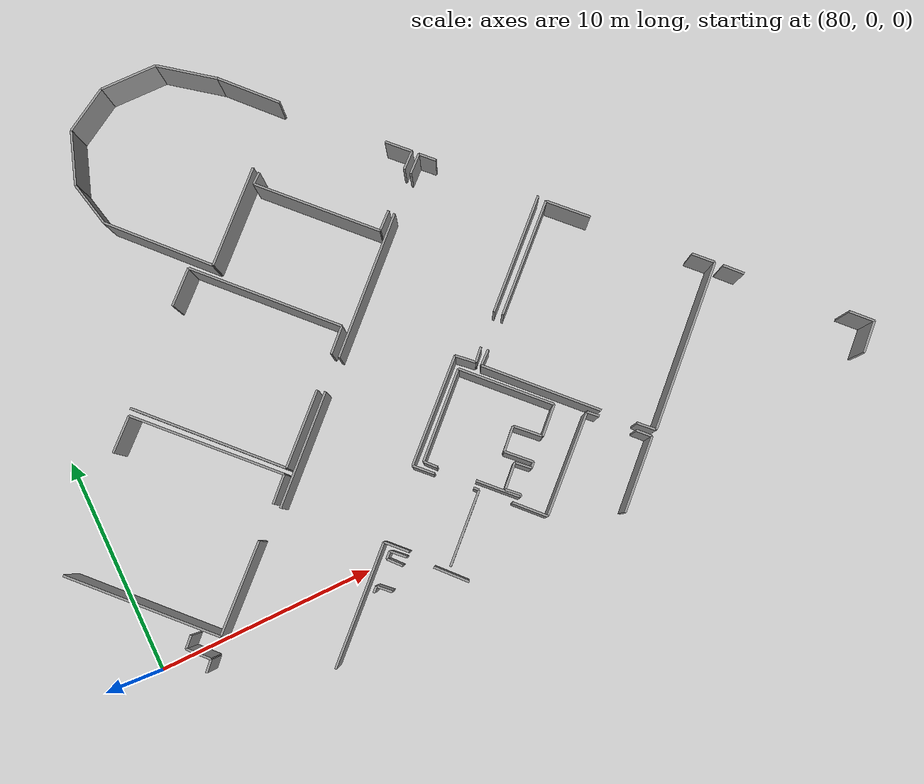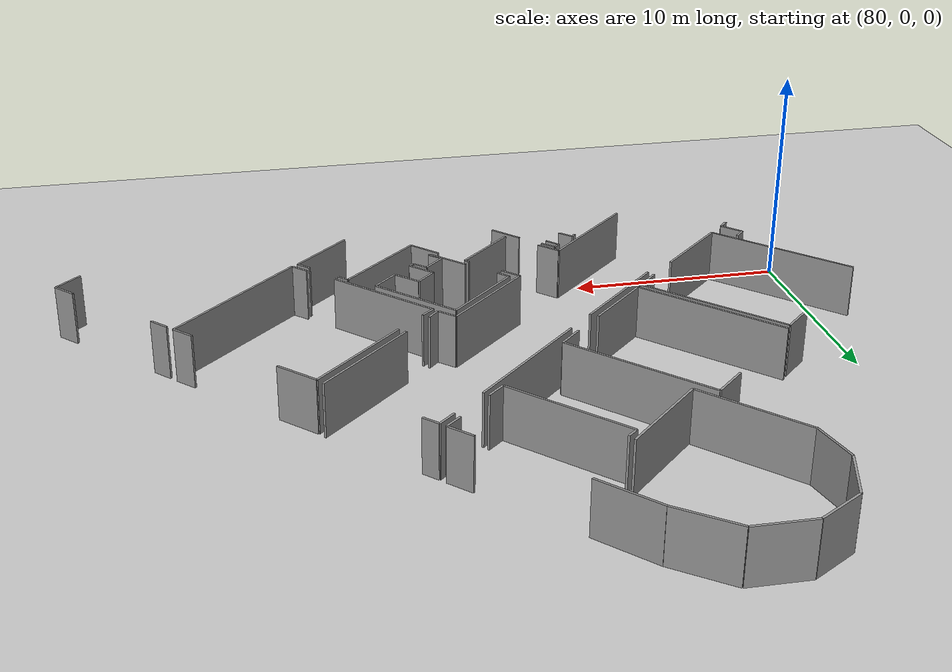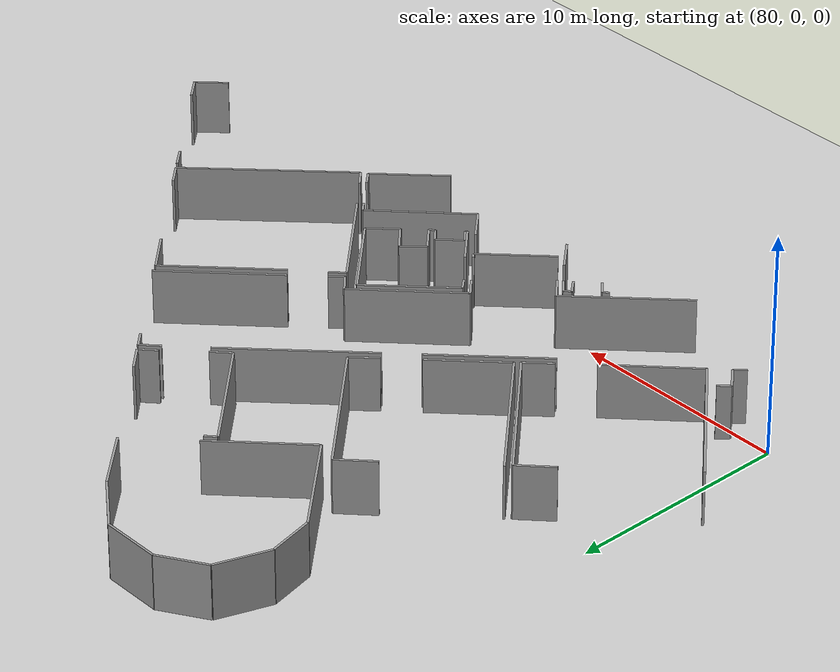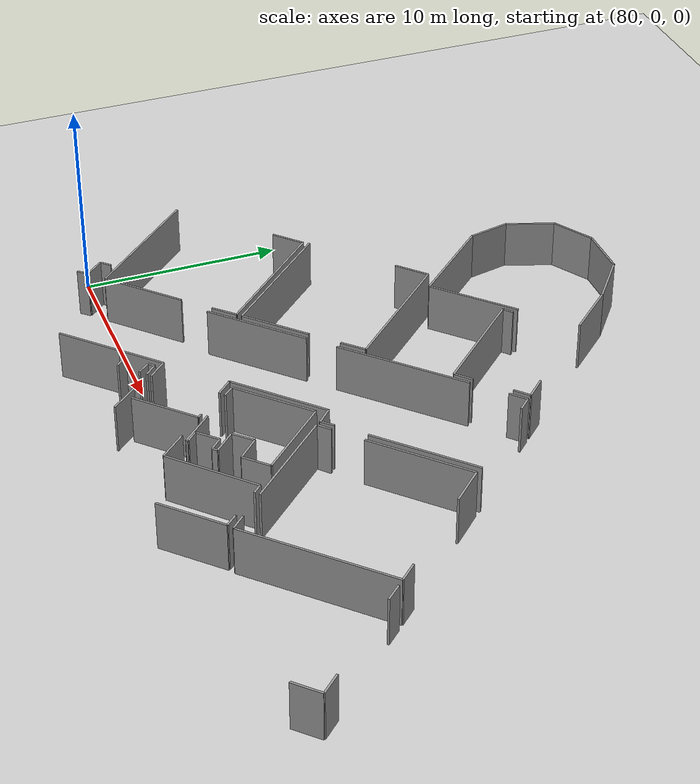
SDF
<sdf version="1.6">
 <world name="default">
  <model name="ground_plane">
   <static>1</static>
   <link name="link">
    <collision name="collision">
     <geometry><plane><normal>0 0 1</normal><size>100 100</size></plane></geometry>
     <surface><friction><ode><mu>100</mu><mu2>50</mu2></ode></friction></surface>
    </collision>
    <visual name="visual">
     <cast_shadows>0</cast_shadows>
     <geometry><plane><normal>0 0 1</normal><size>100 100</size></plane></geometry>
     <material>
      <script><uri>file://media/materials/scripts/gazebo.material</uri><name>Gazebo/Grey</name></script>
     </material>
    </visual>
   </link>
  </model>
  <model name="0510035343_A_40_1_102">
   <static>1</static>
   <link name="Wall_574">
    <collision name="Wall_574_Collision">
     <geometry><box><size>5.35597744258 0.1 2.5</size></box></geometry>
     <pose>2.67798872129 0 1.25 0 0 0</pose>
    </collision>
    <visual name="Wall_574_Visual">
     <pose>2.67798872129 0 1.25 0 0 0</pose>
     <geometry><box><size>5.35597744258 0.1 2.5</size></box></geometry>
     <material>
      <script><uri>file://media/materials/scripts/gazebo.material</uri><name>Gazebo/Grey</name></script>
      <ambient>1 1 1 1</ambient>
     </material>
    </visual>
    <pose>204.642736996 -20.2969310356 0 0 0 0.770984143281</pose>
   </link>
   <link name="Wall_575">
    <collision name="Wall_575_Collision">
     <geometry><box><size>6.81104878013 0.1 2.5</size></box></geometry>
     <pose>3.40552439007 0 1.25 0 0 0</pose>
    </collision>
    <visual name="Wall_575_Visual">
     <pose>3.40552439007 0 1.25 0 0 0</pose>
     <geometry><box><size>6.81104878013 0.1 2.5</size></box></geometry>
     <material>
      <script><uri>file://media/materials/scripts/gazebo.material</uri><name>Gazebo/Grey</name></script>
      <ambient>1 1 1 1</ambient>
     </material>
    </visual>
    <pose>209.631787743 -15.4655495255 0 0 0 0.771005737087</pose>
   </link>
   <link name="Wall_576">
    <collision name="Wall_576_Collision">
     <geometry><box><size>0.946345172183 0.1 2.5</size></box></geometry>
     <pose>0.473172586092 0 1.25 0 0 0</pose>
    </collision>
    <visual name="Wall_576_Visual">
     <pose>0.473172586092 0 1.25 0 0 0</pose>
     <geometry><box><size>0.946345172183 0.1 2.5</size></box></geometry>
     <material>
      <script><uri>file://media/materials/scripts/gazebo.material</uri><name>Gazebo/Grey</name></script>
      <ambient>1 1 1 1</ambient>
     </material>
    </visual>
    <pose>215.930940366 -9.38119267511 0 0 0 0.740991371402</pose>
   </link>
   <link name="Wall_577">
    <collision name="Wall_577_Collision">
     <geometry><box><size>0.811007807379 0.1 2.5</size></box></geometry>
     <pose>0.405503903689 0 1.25 0 0 0</pose>
    </collision>
    <visual name="Wall_577_Visual">
     <pose>0.405503903689 0 1.25 0 0 0</pose>
     <geometry><box><size>0.811007807379 0.1 2.5</size></box></geometry>
     <material>
      <script><uri>file://media/materials/scripts/gazebo.material</uri><name>Gazebo/Grey</name></script>
      <ambient>1 1 1 1</ambient>
     </material>
    </visual>
    <pose>216.629153575 -8.74239106287 0 0 0 -0.798016488557</pose>
   </link>
   <link name="Wall_578">
    <collision name="Wall_578_Collision">
     <geometry><box><size>5.53322141481 0.1 2.5</size></box></geometry>
     <pose>2.76661070741 0 1.25 0 0 0</pose>
    </collision>
    <visual name="Wall_578_Visual">
     <pose>2.76661070741 0 1.25 0 0 0</pose>
     <geometry><box><size>5.53322141481 0.1 2.5</size></box></geometry>
     <material>
      <script><uri>file://media/materials/scripts/gazebo.material</uri><name>Gazebo/Grey</name></script>
      <ambient>1 1 1 1</ambient>
     </material>
    </visual>
    <pose>220.577231902 -12.7054492367 0 0 0 -2.37650713707</pose>
   </link>
   <link name="Wall_579">
    <collision name="Wall_579_Collision">
     <geometry><box><size>0.702484060001 0.1 2.5</size></box></geometry>
     <pose>0.35124203 0 1.25 0 0 0</pose>
    </collision>
    <visual name="Wall_579_Visual">
     <pose>0.35124203 0 1.25 0 0 0</pose>
     <geometry><box><size>0.702484060001 0.1 2.5</size></box></geometry>
     <material>
      <script><uri>file://media/materials/scripts/gazebo.material</uri><name>Gazebo/Grey</name></script>
      <ambient>1 1 1 1</ambient>
     </material>
    </visual>
    <pose>215.395220413 -17.6939921927 0 0 0 -2.31785012235</pose>
   </link>
   <link name="Wall_580">
    <collision name="Wall_580_Collision">
     <geometry><box><size>0.95797903944 0.1 2.5</size></box></geometry>
     <pose>0.47898951972 0 1.25 0 0 0</pose>
    </collision>
    <visual name="Wall_580_Visual">
     <pose>0.47898951972 0 1.25 0 0 0</pose>
     <geometry><box><size>0.95797903944 0.1 2.5</size></box></geometry>
     <material>
      <script><uri>file://media/materials/scripts/gazebo.material</uri><name>Gazebo/Grey</name></script>
      <ambient>1 1 1 1</ambient>
     </material>
    </visual>
    <pose>214.917896474 -18.2094004887 0 0 0 2.38355923619</pose>
   </link>
   <link name="Wall_581">
    <collision name="Wall_581_Collision">
     <geometry><box><size>5.11075482828 0.1 2.5</size></box></geometry>
     <pose>2.55537741414 0 1.25 0 0 0</pose>
    </collision>
    <visual name="Wall_581_Visual">
     <pose>2.55537741414 0 1.25 0 0 0</pose>
     <geometry><box><size>5.11075482828 0.1 2.5</size></box></geometry>
     <material>
      <script><uri>file://media/materials/scripts/gazebo.material</uri><name>Gazebo/Grey</name></script>
      <ambient>1 1 1 1</ambient>
     </material>
    </visual>
    <pose>214.222222222 -17.5507950109 0 0 0 -2.37867840273</pose>
   </link>
   <link name="Wall_582">
    <collision name="Wall_582_Collision">
     <geometry><box><size>1.00522058116 0.1 2.5</size></box></geometry>
     <pose>0.502610290581 0 1.25 0 0 0</pose>
    </collision>
    <visual name="Wall_582_Visual">
     <pose>0.502610290581 0 1.25 0 0 0</pose>
     <geometry><box><size>1.00522058116 0.1 2.5</size></box></geometry>
     <material>
      <script><uri>file://media/materials/scripts/gazebo.material</uri><name>Gazebo/Grey</name></script>
      <ambient>1 1 1 1</ambient>
     </material>
    </visual>
    <pose>210.528039608 -21.0824843695 0 0 0 -0.792363580307</pose>
   </link>
   <link name="Wall_583">
    <collision name="Wall_583_Collision">
     <geometry><box><size>0.249557142437 0.1 2.5</size></box></geometry>
     <pose>0.124778571218 0 1.25 0 0 0</pose>
    </collision>
    <visual name="Wall_583_Visual">
     <pose>0.124778571218 0 1.25 0 0 0</pose>
     <geometry><box><size>0.249557142437 0.1 2.5</size></box></geometry>
     <material>
      <script><uri>file://media/materials/scripts/gazebo.material</uri><name>Gazebo/Grey</name></script>
      <ambient>1 1 1 1</ambient>
     </material>
    </visual>
    <pose>212.498270335 -23.0646481958 0 0 0 -0.861728651032</pose>
   </link>
   <link name="Wall_584">
    <collision name="Wall_584_Collision">
     <geometry><box><size>3.47196808296 0.1 2.5</size></box></geometry>
     <pose>1.73598404148 0 1.25 0 0 0</pose>
    </collision>
    <visual name="Wall_584_Visual">
     <pose>1.73598404148 0 1.25 0 0 0</pose>
     <geometry><box><size>3.47196808296 0.1 2.5</size></box></geometry>
     <material>
      <script><uri>file://media/materials/scripts/gazebo.material</uri><name>Gazebo/Grey</name></script>
      <ambient>1 1 1 1</ambient>
     </material>
    </visual>
    <pose>212.660763591 -23.2540543972 0 0 0 -2.37398326316</pose>
   </link>
   <link name="Wall_586">
    <collision name="Wall_586_Collision">
     <geometry><box><size>1.16697001663 0.1 2.5</size></box></geometry>
     <pose>0.583485008315 0 1.25 0 0 0</pose>
    </collision>
    <visual name="Wall_586_Visual">
     <pose>0.583485008315 0 1.25 0 0 0</pose>
     <geometry><box><size>1.16697001663 0.1 2.5</size></box></geometry>
     <material>
      <script><uri>file://media/materials/scripts/gazebo.material</uri><name>Gazebo/Grey</name></script>
      <ambient>1 1 1 1</ambient>
     </material>
    </visual>
    <pose>208.847249992 -24.3468215431 0 0 0 2.33788602682</pose>
   </link>
   <link name="Wall_587">
    <collision name="Wall_587_Collision">
     <geometry><box><size>5.69097481435 0.1 2.5</size></box></geometry>
     <pose>2.84548740717 0 1.25 0 0 0</pose>
    </collision>
    <visual name="Wall_587_Visual">
     <pose>2.84548740717 0 1.25 0 0 0</pose>
     <geometry><box><size>5.69097481435 0.1 2.5</size></box></geometry>
     <material>
      <script><uri>file://media/materials/scripts/gazebo.material</uri><name>Gazebo/Grey</name></script>
      <ambient>1 1 1 1</ambient>
     </material>
    </visual>
    <pose>208.03732267 -23.5066806309 0 0 0 -2.37405086182</pose>
   </link>
   <link name="Wall_608">
    <collision name="Wall_608_Collision">
     <geometry><box><size>0.605645803931 0.1 2.5</size></box></geometry>
     <pose>0.302822901965 0 1.25 0 0 0</pose>
    </collision>
    <visual name="Wall_608_Visual">
     <pose>0.302822901965 0 1.25 0 0 0</pose>
     <geometry><box><size>0.605645803931 0.1 2.5</size></box></geometry>
     <material>
      <script><uri>file://media/materials/scripts/gazebo.material</uri><name>Gazebo/Grey</name></script>
      <ambient>1 1 1 1</ambient>
     </material>
    </visual>
    <pose>199.005236599 -23.5493351106 0 0 0 -2.33929719549</pose>
   </link>
   <link name="Wall_609">
    <collision name="Wall_609_Collision">
     <geometry><box><size>1.15027437763 0.1 2.5</size></box></geometry>
     <pose>0.575137188815 0 1.25 0 0 0</pose>
    </collision>
    <visual name="Wall_609_Visual">
     <pose>0.575137188815 0 1.25 0 0 0</pose>
     <geometry><box><size>1.15027437763 0.1 2.5</size></box></geometry>
     <material>
      <script><uri>file://media/materials/scripts/gazebo.material</uri><name>Gazebo/Grey</name></script>
      <ambient>1 1 1 1</ambient>
     </material>
    </visual>
    <pose>198.584277508 -23.9847662573 0 0 0 -0.821147411722</pose>
   </link>
   <link name="Wall_610">
    <collision name="Wall_610_Collision">
     <geometry><box><size>0.595863378748 0.1 2.5</size></box></geometry>
     <pose>0.297931689374 0 1.25 0 0 0</pose>
    </collision>
    <visual name="Wall_610_Visual">
     <pose>0.297931689374 0 1.25 0 0 0</pose>
     <geometry><box><size>0.595863378748 0.1 2.5</size></box></geometry>
     <material>
      <script><uri>file://media/materials/scripts/gazebo.material</uri><name>Gazebo/Grey</name></script>
      <ambient>1 1 1 1</ambient>
     </material>
    </visual>
    <pose>199.368053572 -24.8266844394 0 0 0 -2.32153848883</pose>
   </link>
   <link name="Wall_613">
    <collision name="Wall_613_Collision">
     <geometry><box><size>7.22774829624 0.1 2.5</size></box></geometry>
     <pose>3.61387414812 0 1.25 0 0 0</pose>
    </collision>
    <visual name="Wall_613_Visual">
     <pose>3.61387414812 0 1.25 0 0 0</pose>
     <geometry><box><size>7.22774829624 0.1 2.5</size></box></geometry>
     <material>
      <script><uri>file://media/materials/scripts/gazebo.material</uri><name>Gazebo/Grey</name></script>
      <ambient>1 1 1 1</ambient>
     </material>
    </visual>
    <pose>200.108413469 -24.1444666603 0 0 0 2.33629698978</pose>
   </link>
   <link name="Wall_615">
    <collision name="Wall_615_Collision">
     <geometry><box><size>1.72549806891 0.1 2.5</size></box></geometry>
     <pose>0.862749034455 0 1.25 0 0 0</pose>
    </collision>
    <visual name="Wall_615_Visual">
     <pose>0.862749034455 0 1.25 0 0 0</pose>
     <geometry><box><size>1.72549806891 0.1 2.5</size></box></geometry>
     <material>
      <script><uri>file://media/materials/scripts/gazebo.material</uri><name>Gazebo/Grey</name></script>
      <ambient>1 1 1 1</ambient>
     </material>
    </visual>
    <pose>199.12126694 -15.0570313244 0 0 0 0.749702764283</pose>
   </link>
   <link name="Wall_616">
    <collision name="Wall_616_Collision">
     <geometry><box><size>7.19615320807 0.1 2.5</size></box></geometry>
     <pose>3.59807660404 0 1.25 0 0 0</pose>
    </collision>
    <visual name="Wall_616_Visual">
     <pose>3.59807660404 0 1.25 0 0 0</pose>
     <geometry><box><size>7.19615320807 0.1 2.5</size></box></geometry>
     <material>
      <script><uri>file://media/materials/scripts/gazebo.material</uri><name>Gazebo/Grey</name></script>
      <ambient>1 1 1 1</ambient>
     </material>
    </visual>
    <pose>200.384144213 -13.8812402806 0 0 0 -0.801166106446</pose>
   </link>
   <link name="Wall_617">
    <collision name="Wall_617_Collision">
     <geometry><box><size>1.35420530574 0.1 2.5</size></box></geometry>
     <pose>0.677102652872 0 1.25 0 0 0</pose>
    </collision>
    <visual name="Wall_617_Visual">
     <pose>0.677102652872 0 1.25 0 0 0</pose>
     <geometry><box><size>1.35420530574 0.1 2.5</size></box></geometry>
     <material>
      <script><uri>file://media/materials/scripts/gazebo.material</uri><name>Gazebo/Grey</name></script>
      <ambient>1 1 1 1</ambient>
     </material>
    </visual>
    <pose>205.391729347 -19.0492875052 0 0 0 -2.35579677047</pose>
   </link>
   <link name="Wall_618">
    <collision name="Wall_618_Collision">
     <geometry><box><size>4.32159609172 0.1 2.5</size></box></geometry>
     <pose>2.16079804586 0 1.25 0 0 0</pose>
    </collision>
    <visual name="Wall_618_Visual">
     <pose>2.16079804586 0 1.25 0 0 0</pose>
     <geometry><box><size>4.32159609172 0.1 2.5</size></box></geometry>
     <material>
      <script><uri>file://media/materials/scripts/gazebo.material</uri><name>Gazebo/Grey</name></script>
      <ambient>1 1 1 1</ambient>
     </material>
    </visual>
    <pose>203.244533308 -21.1710939732 0 0 0 -2.38282659947</pose>
   </link>
   <link name="Wall_619">
    <collision name="Wall_619_Collision">
     <geometry><box><size>7.26692390751 0.1 2.5</size></box></geometry>
     <pose>3.63346195376 0 1.25 0 0 0</pose>
    </collision>
    <visual name="Wall_619_Visual">
     <pose>3.63346195376 0 1.25 0 0 0</pose>
     <geometry><box><size>7.26692390751 0.1 2.5</size></box></geometry>
     <material>
      <script><uri>file://media/materials/scripts/gazebo.material</uri><name>Gazebo/Grey</name></script>
      <ambient>1 1 1 1</ambient>
     </material>
    </visual>
    <pose>205.587229046 -18.8479482053 0 0 0 2.33489693001</pose>
   </link>
   <link name="Wall_620">
    <collision name="Wall_620_Collision">
     <geometry><box><size>1.80214210823 0.1 2.5</size></box></geometry>
     <pose>0.901071054113 0 1.25 0 0 0</pose>
    </collision>
    <visual name="Wall_620_Visual">
     <pose>0.901071054113 0 1.25 0 0 0</pose>
     <geometry><box><size>1.80214210823 0.1 2.5</size></box></geometry>
     <material>
      <script><uri>file://media/materials/scripts/gazebo.material</uri><name>Gazebo/Grey</name></script>
      <ambient>1 1 1 1</ambient>
     </material>
    </visual>
    <pose>204.028309372 -10.2860769939 0 0 0 0.750723072206</pose>
   </link>
   <link name="Wall_621">
    <collision name="Wall_621_Collision">
     <geometry><box><size>7.20324754814 0.1 2.5</size></box></geometry>
     <pose>3.60162377407 0 1.25 0 0 0</pose>
    </collision>
    <visual name="Wall_621_Visual">
     <pose>3.60162377407 0 1.25 0 0 0</pose>
     <geometry><box><size>7.20324754814 0.1 2.5</size></box></geometry>
     <material>
      <script><uri>file://media/materials/scripts/gazebo.material</uri><name>Gazebo/Grey</name></script>
      <ambient>1 1 1 1</ambient>
     </material>
    </visual>
    <pose>205.346028119 -9.05671395474 0 0 0 -0.807158246333</pose>
   </link>
   <link name="Wall_622">
    <collision name="Wall_622_Collision">
     <geometry><box><size>1.31077730524 0.1 2.5</size></box></geometry>
     <pose>0.655388652621 0 1.25 0 0 0</pose>
    </collision>
    <visual name="Wall_622_Visual">
     <pose>0.655388652621 0 1.25 0 0 0</pose>
     <geometry><box><size>1.31077730524 0.1 2.5</size></box></geometry>
     <material>
      <script><uri>file://media/materials/scripts/gazebo.material</uri><name>Gazebo/Grey</name></script>
      <ambient>1 1 1 1</ambient>
     </material>
    </visual>
    <pose>210.327461995 -14.2597987876 0 0 0 -2.3615361734</pose>
   </link>
   <link name="Wall_623">
    <collision name="Wall_623_Collision">
     <geometry><box><size>3.60869728674 0.1 2.5</size></box></geometry>
     <pose>1.80434864337 0 1.25 0 0 0</pose>
    </collision>
    <visual name="Wall_623_Visual">
     <pose>1.80434864337 0 1.25 0 0 0</pose>
     <geometry><box><size>3.60869728674 0.1 2.5</size></box></geometry>
     <material>
      <script><uri>file://media/materials/scripts/gazebo.material</uri><name>Gazebo/Grey</name></script>
      <ambient>1 1 1 1</ambient>
     </material>
    </visual>
    <pose>208.18712114 -16.3452981688 0 0 0 -2.3752497543</pose>
   </link>
   <link name="Wall_624">
    <collision name="Wall_624_Collision">
     <geometry><box><size>5.97705456385 0.1 2.5</size></box></geometry>
     <pose>2.98852728193 0 1.25 0 0 0</pose>
    </collision>
    <visual name="Wall_624_Visual">
     <pose>2.98852728193 0 1.25 0 0 0</pose>
     <geometry><box><size>5.97705456385 0.1 2.5</size></box></geometry>
     <material>
      <script><uri>file://media/materials/scripts/gazebo.material</uri><name>Gazebo/Grey</name></script>
      <ambient>1 1 1 1</ambient>
     </material>
    </visual>
    <pose>213.620489384 -11.1422133359 0 0 0 2.33796116391</pose>
   </link>
   <link name="Wall_625">
    <collision name="Wall_625_Collision">
     <geometry><box><size>0.561423991103 0.1 2.5</size></box></geometry>
     <pose>0.280711995551 0 1.25 0 0 0</pose>
    </collision>
    <visual name="Wall_625_Visual">
     <pose>0.280711995551 0 1.25 0 0 0</pose>
     <geometry><box><size>0.561423991103 0.1 2.5</size></box></geometry>
     <material>
      <script><uri>file://media/materials/scripts/gazebo.material</uri><name>Gazebo/Grey</name></script>
      <ambient>1 1 1 1</ambient>
     </material>
    </visual>
    <pose>209.471833444 -6.83944269891 0 0 0 0.700876010356</pose>
   </link>
   <link name="Wall_626">
    <collision name="Wall_626_Collision">
     <geometry><box><size>1.26234948959 0.1 2.5</size></box></geometry>
     <pose>0.631174744794 0 1.25 0 0 0</pose>
    </collision>
    <visual name="Wall_626_Visual">
     <pose>0.631174744794 0 1.25 0 0 0</pose>
     <geometry><box><size>1.26234948959 0.1 2.5</size></box></geometry>
     <material>
      <script><uri>file://media/materials/scripts/gazebo.material</uri><name>Gazebo/Grey</name></script>
      <ambient>1 1 1 1</ambient>
     </material>
    </visual>
    <pose>215.522168269 -7.59706750452 0 0 0 -0.795495956997</pose>
   </link>
   <link name="Wall_627">
    <collision name="Wall_627_Collision">
     <geometry><box><size>0.873939911553 0.1 2.5</size></box></geometry>
     <pose>0.436969955776 0 1.25 0 0 0</pose>
    </collision>
    <visual name="Wall_627_Visual">
     <pose>0.436969955776 0 1.25 0 0 0</pose>
     <geometry><box><size>0.873939911553 0.1 2.5</size></box></geometry>
     <material>
      <script><uri>file://media/materials/scripts/gazebo.material</uri><name>Gazebo/Grey</name></script>
      <ambient>1 1 1 1</ambient>
     </material>
    </visual>
    <pose>216.405725348 -8.49865117903 0 0 0 -2.40942537395</pose>
   </link>
   <link name="Wall_628">
    <collision name="Wall_628_Collision">
     <geometry><box><size>0.970597880918 0.1 2.5</size></box></geometry>
     <pose>0.485298940459 0 1.25 0 0 0</pose>
    </collision>
    <visual name="Wall_628_Visual">
     <pose>0.485298940459 0 1.25 0 0 0</pose>
     <geometry><box><size>0.970597880918 0.1 2.5</size></box></geometry>
     <material>
      <script><uri>file://media/materials/scripts/gazebo.material</uri><name>Gazebo/Grey</name></script>
      <ambient>1 1 1 1</ambient>
     </material>
    </visual>
    <pose>214.336475293 -10.4869085023 0 0 0 -2.40041670519</pose>
   </link>
   <link name="Wall_629">
    <collision name="Wall_629_Collision">
     <geometry><box><size>0.874857316917 0.1 2.5</size></box></geometry>
     <pose>0.437428658459 0 1.25 0 0 0</pose>
    </collision>
    <visual name="Wall_629_Visual">
     <pose>0.437428658459 0 1.25 0 0 0</pose>
     <geometry><box><size>0.874857316917 0.1 2.5</size></box></geometry>
     <material>
      <script><uri>file://media/materials/scripts/gazebo.material</uri><name>Gazebo/Grey</name></script>
      <ambient>1 1 1 1</ambient>
     </material>
    </visual>
    <pose>220.681329144 -24.1909295757 0 0 0 2.35763097597</pose>
   </link>
   <link name="Wall_630">
    <collision name="Wall_630_Collision">
     <geometry><box><size>5.53845837258 0.1 2.5</size></box></geometry>
     <pose>2.76922918629 0 1.25 0 0 0</pose>
    </collision>
    <visual name="Wall_630_Visual">
     <pose>2.76922918629 0 1.25 0 0 0</pose>
     <geometry><box><size>5.53845837258 0.1 2.5</size></box></geometry>
     <material>
      <script><uri>file://media/materials/scripts/gazebo.material</uri><name>Gazebo/Grey</name></script>
      <ambient>1 1 1 1</ambient>
     </material>
    </visual>
    <pose>218.911676029 -22.4212764607 0 0 0 2.33726276189</pose>
   </link>
   <link name="Wall_631">
    <collision name="Wall_631_Collision">
     <geometry><box><size>0.757883124284 0.1 2.5</size></box></geometry>
     <pose>0.378941562142 0 1.25 0 0 0</pose>
    </collision>
    <visual name="Wall_631_Visual">
     <pose>0.378941562142 0 1.25 0 0 0</pose>
     <geometry><box><size>0.757883124284 0.1 2.5</size></box></geometry>
     <material>
      <script><uri>file://media/materials/scripts/gazebo.material</uri><name>Gazebo/Grey</name></script>
      <ambient>1 1 1 1</ambient>
     </material>
    </visual>
    <pose>215.070233901 -18.431559237 0 0 0 0.722107539806</pose>
   </link>
   <link name="Wall_632">
    <collision name="Wall_632_Collision">
     <geometry><box><size>5.41081431396 0.1 2.5</size></box></geometry>
     <pose>2.70540715698 0 1.25 0 0 0</pose>
    </collision>
    <visual name="Wall_632_Visual">
     <pose>2.70540715698 0 1.25 0 0 0</pose>
     <geometry><box><size>5.41081431396 0.1 2.5</size></box></geometry>
     <material>
      <script><uri>file://media/materials/scripts/gazebo.material</uri><name>Gazebo/Grey</name></script>
      <ambient>1 1 1 1</ambient>
     </material>
    </visual>
    <pose>216.875432416 -16.813735758 0 0 0 0.764559550135</pose>
   </link>
   <link name="Wall_633">
    <collision name="Wall_633_Collision">
     <geometry><box><size>2.0740439725 0.1 2.5</size></box></geometry>
     <pose>1.03702198625 0 1.25 0 0 0</pose>
    </collision>
    <visual name="Wall_633_Visual">
     <pose>1.03702198625 0 1.25 0 0 0</pose>
     <geometry><box><size>2.0740439725 0.1 2.5</size></box></geometry>
     <material>
      <script><uri>file://media/materials/scripts/gazebo.material</uri><name>Gazebo/Grey</name></script>
      <ambient>1 1 1 1</ambient>
     </material>
    </visual>
    <pose>220.780348472 -13.0682662097 0 0 0 -0.795093150492</pose>
   </link>
   <link name="Wall_634">
    <collision name="Wall_634_Collision">
     <geometry><box><size>1.07070531203 0.1 2.5</size></box></geometry>
     <pose>0.535352656013 0 1.25 0 0 0</pose>
    </collision>
    <visual name="Wall_634_Visual">
     <pose>0.535352656013 0 1.25 0 0 0</pose>
     <geometry><box><size>1.07070531203 0.1 2.5</size></box></geometry>
     <material>
      <script><uri>file://media/materials/scripts/gazebo.material</uri><name>Gazebo/Grey</name></script>
      <ambient>1 1 1 1</ambient>
     </material>
    </visual>
    <pose>225.525659335 -17.9395093465 0 0 0 -0.802669630451</pose>
   </link>
   <link name="Wall_635">
    <collision name="Wall_635_Collision">
     <geometry><box><size>7.82775354437 0.1 2.5</size></box></geometry>
     <pose>3.91387677219 0 1.25 0 0 0</pose>
    </collision>
    <visual name="Wall_635_Visual">
     <pose>3.91387677219 0 1.25 0 0 0</pose>
     <geometry><box><size>7.82775354437 0.1 2.5</size></box></geometry>
     <material>
      <script><uri>file://media/materials/scripts/gazebo.material</uri><name>Gazebo/Grey</name></script>
      <ambient>1 1 1 1</ambient>
     </material>
    </visual>
    <pose>226.269573773 -18.7095750421 0 0 0 -2.36585037486</pose>
   </link>
   <link name="Wall_636">
    <collision name="Wall_636_Collision">
     <geometry><box><size>2.02272701951 0.1 2.5</size></box></geometry>
     <pose>1.01136350976 0 1.25 0 0 0</pose>
    </collision>
    <visual name="Wall_636_Visual">
     <pose>1.01136350976 0 1.25 0 0 0</pose>
     <geometry><box><size>2.02272701951 0.1 2.5</size></box></geometry>
     <material>
      <script><uri>file://media/materials/scripts/gazebo.material</uri><name>Gazebo/Grey</name></script>
      <ambient>1 1 1 1</ambient>
     </material>
    </visual>
    <pose>214.13589768 -24.2747151607 0 0 0 2.34501086274</pose>
   </link>
   <link name="Wall_637">
    <collision name="Wall_637_Collision">
     <geometry><box><size>0.643534231842 0.1 2.5</size></box></geometry>
     <pose>0.321767115921 0 1.25 0 0 0</pose>
    </collision>
    <visual name="Wall_637_Visual">
     <pose>0.321767115921 0 1.25 0 0 0</pose>
     <geometry><box><size>0.643534231842 0.1 2.5</size></box></geometry>
     <material>
      <script><uri>file://media/materials/scripts/gazebo.material</uri><name>Gazebo/Grey</name></script>
      <ambient>1 1 1 1</ambient>
     </material>
    </visual>
    <pose>211.464914786 -21.5978926656 0 0 0 2.30595746533</pose>
   </link>
   <link name="Wall_638">
    <collision name="Wall_638_Collision">
     <geometry><box><size>4.28711303718 0.1 2.5</size></box></geometry>
     <pose>2.14355651859 0 1.25 0 0 0</pose>
    </collision>
    <visual name="Wall_638_Visual">
     <pose>2.14355651859 0 1.25 0 0 0</pose>
     <geometry><box><size>4.28711303718 0.1 2.5</size></box></geometry>
     <material>
      <script><uri>file://media/materials/scripts/gazebo.material</uri><name>Gazebo/Grey</name></script>
      <ambient>1 1 1 1</ambient>
     </material>
    </visual>
    <pose>211.033292075 -21.1205687264 0 0 0 0.771033862651</pose>
   </link>
   <link name="Wall_639">
    <collision name="Wall_639_Collision">
     <geometry><box><size>4.42758715986 0.1 2.5</size></box></geometry>
     <pose>2.21379357993 0 1.25 0 0 0</pose>
    </collision>
    <visual name="Wall_639_Visual">
     <pose>2.21379357993 0 1.25 0 0 0</pose>
     <geometry><box><size>4.42758715986 0.1 2.5</size></box></geometry>
     <material>
      <script><uri>file://media/materials/scripts/gazebo.material</uri><name>Gazebo/Grey</name></script>
      <ambient>1 1 1 1</ambient>
     </material>
    </visual>
    <pose>214.107969152 -18.1329778793 0 0 0 -0.800766595249</pose>
   </link>
   <link name="Wall_640">
    <collision name="Wall_640_Collision">
     <geometry><box><size>1.47041570643 0.1 2.5</size></box></geometry>
     <pose>0.735207853213 0 1.25 0 0 0</pose>
    </collision>
    <visual name="Wall_640_Visual">
     <pose>0.735207853213 0 1.25 0 0 0</pose>
     <geometry><box><size>1.47041570643 0.1 2.5</size></box></geometry>
     <material>
      <script><uri>file://media/materials/scripts/gazebo.material</uri><name>Gazebo/Grey</name></script>
      <ambient>1 1 1 1</ambient>
     </material>
    </visual>
    <pose>217.190263099 -21.3114983021 0 0 0 -2.36474129062</pose>
   </link>
   <link name="Wall_641">
    <collision name="Wall_641_Collision">
     <geometry><box><size>1.35050764266 0.1 2.5</size></box></geometry>
     <pose>0.675253821331 0 1.25 0 0 0</pose>
    </collision>
    <visual name="Wall_641_Visual">
     <pose>0.675253821331 0 1.25 0 0 0</pose>
     <geometry><box><size>1.35050764266 0.1 2.5</size></box></geometry>
     <material>
      <script><uri>file://media/materials/scripts/gazebo.material</uri><name>Gazebo/Grey</name></script>
      <ambient>1 1 1 1</ambient>
     </material>
    </visual>
    <pose>216.141673807 -22.3423148942 0 0 0 2.3665637011</pose>
   </link>
   <link name="Wall_642">
    <collision name="Wall_642_Collision">
     <geometry><box><size>1.16715671176 0.1 2.5</size></box></geometry>
     <pose>0.583578355881 0 1.25 0 0 0</pose>
    </collision>
    <visual name="Wall_642_Visual">
     <pose>0.583578355881 0 1.25 0 0 0</pose>
     <geometry><box><size>1.16715671176 0.1 2.5</size></box></geometry>
     <material>
      <script><uri>file://media/materials/scripts/gazebo.material</uri><name>Gazebo/Grey</name></script>
      <ambient>1 1 1 1</ambient>
     </material>
    </visual>
    <pose>215.176870101 -21.3973150528 0 0 0 -2.34988785176</pose>
   </link>
   <link name="Wall_643">
    <collision name="Wall_643_Collision">
     <geometry><box><size>1.33607257752 0.1 2.5</size></box></geometry>
     <pose>0.668036288758 0 1.25 0 0 0</pose>
    </collision>
    <visual name="Wall_643_Visual">
     <pose>0.668036288758 0 1.25 0 0 0</pose>
     <geometry><box><size>1.33607257752 0.1 2.5</size></box></geometry>
     <material>
      <script><uri>file://media/materials/scripts/gazebo.material</uri><name>Gazebo/Grey</name></script>
      <ambient>1 1 1 1</ambient>
     </material>
    </visual>
    <pose>214.35678695 -22.2278079279 0 0 0 -0.785666908352</pose>
   </link>
   <link name="Wall_644">
    <collision name="Wall_644_Collision">
     <geometry><box><size>0.273067287856 0.1 2.5</size></box></geometry>
     <pose>0.136533643928 0 1.25 0 0 0</pose>
    </collision>
    <visual name="Wall_644_Visual">
     <pose>0.136533643928 0 1.25 0 0 0</pose>
     <geometry><box><size>0.273067287856 0.1 2.5</size></box></geometry>
     <material>
      <script><uri>file://media/materials/scripts/gazebo.material</uri><name>Gazebo/Grey</name></script>
      <ambient>1 1 1 1</ambient>
     </material>
    </visual>
    <pose>215.301279 -23.1728077692 0 0 0 -2.35553702809</pose>
   </link>
   <link name="Wall_645">
    <collision name="Wall_645_Collision">
     <geometry><box><size>0.755824166965 0.1 2.5</size></box></geometry>
     <pose>0.377912083482 0 1.25 0 0 0</pose>
    </collision>
    <visual name="Wall_645_Visual">
     <pose>0.377912083482 0 1.25 0 0 0</pose>
     <geometry><box><size>0.755824166965 0.1 2.5</size></box></geometry>
     <material>
      <script><uri>file://media/materials/scripts/gazebo.material</uri><name>Gazebo/Grey</name></script>
      <ambient>1 1 1 1</ambient>
     </material>
    </visual>
    <pose>215.108318258 -23.3660224063 0 0 0 2.37781145978</pose>
   </link>
   <link name="Wall_646">
    <collision name="Wall_646_Collision">
     <geometry><box><size>1.23374047872 0.1 2.5</size></box></geometry>
     <pose>0.616870239361 0 1.25 0 0 0</pose>
    </collision>
    <visual name="Wall_646_Visual">
     <pose>0.616870239361 0 1.25 0 0 0</pose>
     <geometry><box><size>1.23374047872 0.1 2.5</size></box></geometry>
     <material>
      <script><uri>file://media/materials/scripts/gazebo.material</uri><name>Gazebo/Grey</name></script>
      <ambient>1 1 1 1</ambient>
     </material>
    </visual>
    <pose>214.562442477 -22.8432511346 0 0 0 -2.35735863402</pose>
   </link>
   <link name="Wall_647">
    <collision name="Wall_647_Collision">
     <geometry><box><size>0.710995991163 0.1 2.5</size></box></geometry>
     <pose>0.355497995581 0 1.25 0 0 0</pose>
    </collision>
    <visual name="Wall_647_Visual">
     <pose>0.355497995581 0 1.25 0 0 0</pose>
     <geometry><box><size>0.710995991163 0.1 2.5</size></box></geometry>
     <material>
      <script><uri>file://media/materials/scripts/gazebo.material</uri><name>Gazebo/Grey</name></script>
      <ambient>1 1 1 1</ambient>
     </material>
    </visual>
    <pose>213.689041226 -23.7146212193 0 0 0 -0.759892203038</pose>
   </link>
   <link name="Wall_648">
    <collision name="Wall_648_Collision">
     <geometry><box><size>0.0982117056479 0.1 2.5</size></box></geometry>
     <pose>0.0491058528239 0 1.25 0 0 0</pose>
    </collision>
    <visual name="Wall_648_Visual">
     <pose>0.0491058528239 0 1.25 0 0 0</pose>
     <geometry><box><size>0.0982117056479 0.1 2.5</size></box></geometry>
     <material>
      <script><uri>file://media/materials/scripts/gazebo.material</uri><name>Gazebo/Grey</name></script>
      <ambient>1 1 1 1</ambient>
     </material>
    </visual>
    <pose>214.204449522 -24.2043860484 0 0 0 -2.34339811374</pose>
   </link>
   <link name="Wall_650">
    <collision name="Wall_650_Collision">
     <geometry><box><size>0.290154703857 0.1 2.5</size></box></geometry>
     <pose>0.145077351929 0 1.25 0 0 0</pose>
    </collision>
    <visual name="Wall_650_Visual">
     <pose>0.145077351929 0 1.25 0 0 0</pose>
     <geometry><box><size>0.290154703857 0.1 2.5</size></box></geometry>
     <material>
      <script><uri>file://media/materials/scripts/gazebo.material</uri><name>Gazebo/Grey</name></script>
      <ambient>1 1 1 1</ambient>
     </material>
    </visual>
    <pose>206.750071408 -25.2649084389 0 0 0 0.770547770018</pose>
   </link>
   <link name="Wall_651">
    <collision name="Wall_651_Collision">
     <geometry><box><size>0.725386759643 0.1 2.5</size></box></geometry>
     <pose>0.362693379822 0 1.25 0 0 0</pose>
    </collision>
    <visual name="Wall_651_Visual">
     <pose>0.362693379822 0 1.25 0 0 0</pose>
     <geometry><box><size>0.725386759643 0.1 2.5</size></box></geometry>
     <material>
      <script><uri>file://media/materials/scripts/gazebo.material</uri><name>Gazebo/Grey</name></script>
      <ambient>1 1 1 1</ambient>
     </material>
    </visual>
    <pose>206.958265892 -25.0628074518 0 0 0 -0.770547770018</pose>
   </link>
   <link name="Wall_653">
    <collision name="Wall_653_Collision">
     <geometry><box><size>0.740759788113 0.1 2.5</size></box></geometry>
     <pose>0.370379894057 0 1.25 0 0 0</pose>
    </collision>
    <visual name="Wall_653_Visual">
     <pose>0.370379894057 0 1.25 0 0 0</pose>
     <geometry><box><size>0.740759788113 0.1 2.5</size></box></geometry>
     <material>
      <script><uri>file://media/materials/scripts/gazebo.material</uri><name>Gazebo/Grey</name></script>
      <ambient>1 1 1 1</ambient>
     </material>
    </visual>
    <pose>208.33691961 -24.7596559713 0 0 0 2.29362449948</pose>
   </link>
   <link name="Wall_654">
    <collision name="Wall_654_Collision">
     <geometry><box><size>0.352002484307 0.1 2.5</size></box></geometry>
     <pose>0.176001242154 0 1.25 0 0 0</pose>
    </collision>
    <visual name="Wall_654_Visual">
     <pose>0.176001242154 0 1.25 0 0 0</pose>
     <geometry><box><size>0.352002484307 0.1 2.5</size></box></geometry>
     <material>
      <script><uri>file://media/materials/scripts/gazebo.material</uri><name>Gazebo/Grey</name></script>
      <ambient>1 1 1 1</ambient>
     </material>
    </visual>
    <pose>207.846900885 -24.2041321527 0 0 0 0.744074075912</pose>
   </link>
   <link name="Wall_655">
    <collision name="Wall_655_Collision">
     <geometry><box><size>0.761958587787 0.1 2.5</size></box></geometry>
     <pose>0.380979293893 0 1.25 0 0 0</pose>
    </collision>
    <visual name="Wall_655_Visual">
     <pose>0.380979293893 0 1.25 0 0 0</pose>
     <geometry><box><size>0.761958587787 0.1 2.5</size></box></geometry>
     <material>
      <script><uri>file://media/materials/scripts/gazebo.material</uri><name>Gazebo/Grey</name></script>
      <ambient>1 1 1 1</ambient>
     </material>
    </visual>
    <pose>208.105874512 -23.9657240788 0 0 0 -0.776915803221</pose>
   </link>
   <link name="Wall_656">
    <collision name="Wall_656_Collision">
     <geometry><box><size>1.62773824315 0.1 2.5</size></box></geometry>
     <pose>0.813869121576 0 1.25 0 0 0</pose>
    </collision>
    <visual name="Wall_656_Visual">
     <pose>0.813869121576 0 1.25 0 0 0</pose>
     <geometry><box><size>1.62773824315 0.1 2.5</size></box></geometry>
     <material>
      <script><uri>file://media/materials/scripts/gazebo.material</uri><name>Gazebo/Grey</name></script>
      <ambient>1 1 1 1</ambient>
     </material>
    </visual>
    <pose>209.514995716 -25.3837316322 0 0 0 -0.831407406663</pose>
   </link>
   <link name="Wall_671">
    <collision name="Wall_671_Collision">
     <geometry><box><size>1.62187819908 0.1 2.5</size></box></geometry>
     <pose>0.810939099539 0 1.25 0 0 0</pose>
    </collision>
    <visual name="Wall_671_Visual">
     <pose>0.810939099539 0 1.25 0 0 0</pose>
     <geometry><box><size>1.62187819908 0.1 2.5</size></box></geometry>
     <material>
      <script><uri>file://media/materials/scripts/gazebo.material</uri><name>Gazebo/Grey</name></script>
      <ambient>1 1 1 1</ambient>
     </material>
    </visual>
    <pose>213.724586626 -24.3478371259 0 0 0 -0.810971149947</pose>
   </link>
   <link name="Wall_672">
    <collision name="Wall_672_Collision">
     <geometry><box><size>4.80695191586 0.1 2.5</size></box></geometry>
     <pose>2.40347595793 0 1.25 0 0 0</pose>
    </collision>
    <visual name="Wall_672_Visual">
     <pose>2.40347595793 0 1.25 0 0 0</pose>
     <geometry><box><size>4.80695191586 0.1 2.5</size></box></geometry>
     <material>
      <script><uri>file://media/materials/scripts/gazebo.material</uri><name>Gazebo/Grey</name></script>
      <ambient>1 1 1 1</ambient>
     </material>
    </visual>
    <pose>214.84172776 -25.5236281697 0 0 0 0.759475554816</pose>
   </link>
   <link name="Wall_673">
    <collision name="Wall_673_Collision">
     <geometry><box><size>0.553675241344 0.1 2.5</size></box></geometry>
     <pose>0.276837620672 0 1.25 0 0 0</pose>
    </collision>
    <visual name="Wall_673_Visual">
     <pose>0.276837620672 0 1.25 0 0 0</pose>
     <geometry><box><size>0.553675241344 0.1 2.5</size></box></geometry>
     <material>
      <script><uri>file://media/materials/scripts/gazebo.material</uri><name>Gazebo/Grey</name></script>
      <ambient>1 1 1 1</ambient>
     </material>
    </visual>
    <pose>218.327715891 -22.2138436637 0 0 0 -0.786695179531</pose>
   </link>
   <link name="Wall_674">
    <collision name="Wall_674_Collision">
     <geometry><box><size>0.721939410429 0.1 2.5</size></box></geometry>
     <pose>0.360969705215 0 1.25 0 0 0</pose>
    </collision>
    <visual name="Wall_674_Visual">
     <pose>0.360969705215 0 1.25 0 0 0</pose>
     <geometry><box><size>0.721939410429 0.1 2.5</size></box></geometry>
     <material>
      <script><uri>file://media/materials/scripts/gazebo.material</uri><name>Gazebo/Grey</name></script>
      <ambient>1 1 1 1</ambient>
     </material>
    </visual>
    <pose>219.89933035 -23.8474086769 0 0 0 -0.810268656209</pose>
   </link>
   <link name="Wall_675">
    <collision name="Wall_675_Collision">
     <geometry><box><size>3.49682754819 0.1 2.5</size></box></geometry>
     <pose>1.7484137741 0 1.25 0 0 0</pose>
    </collision>
    <visual name="Wall_675_Visual">
     <pose>1.7484137741 0 1.25 0 0 0</pose>
     <geometry><box><size>3.49682754819 0.1 2.5</size></box></geometry>
     <material>
      <script><uri>file://media/materials/scripts/gazebo.material</uri><name>Gazebo/Grey</name></script>
      <ambient>1 1 1 1</ambient>
     </material>
    </visual>
    <pose>220.396965946 -24.3704338443 0 0 0 -2.36872207467</pose>
   </link>
   <link name="Wall_712">
    <collision name="Wall_712_Collision">
     <geometry><box><size>0.97718519433 0.1 2.5</size></box></geometry>
     <pose>0.488592597165 0 1.25 0 0 0</pose>
    </collision>
    <visual name="Wall_712_Visual">
     <pose>0.488592597165 0 1.25 0 0 0</pose>
     <geometry><box><size>0.97718519433 0.1 2.5</size></box></geometry>
     <material>
      <script><uri>file://media/materials/scripts/gazebo.material</uri><name>Gazebo/Grey</name></script>
      <ambient>1 1 1 1</ambient>
     </material>
    </visual>
    <pose>226.531086356 -18.9906375956 0 0 0 -0.818474331272</pose>
   </link>
   <link name="Wall_713">
    <collision name="Wall_713_Collision">
     <geometry><box><size>1.16141648475 0.1 2.5</size></box></geometry>
     <pose>0.580708242375 0 1.25 0 0 0</pose>
    </collision>
    <visual name="Wall_713_Visual">
     <pose>0.580708242375 0 1.25 0 0 0</pose>
     <geometry><box><size>1.16141648475 0.1 2.5</size></box></geometry>
     <material>
      <script><uri>file://media/materials/scripts/gazebo.material</uri><name>Gazebo/Grey</name></script>
      <ambient>1 1 1 1</ambient>
     </material>
    </visual>
    <pose>230.578184011 -23.1717921864 0 0 0 -0.811215836756</pose>
   </link>
   <link name="Wall_714">
    <collision name="Wall_714_Collision">
     <geometry><box><size>1.48943664724 0.1 2.5</size></box></geometry>
     <pose>0.744718323618 0 1.25 0 0 0</pose>
    </collision>
    <visual name="Wall_714_Visual">
     <pose>0.744718323618 0 1.25 0 0 0</pose>
     <geometry><box><size>1.48943664724 0.1 2.5</size></box></geometry>
     <material>
      <script><uri>file://media/materials/scripts/gazebo.material</uri><name>Gazebo/Grey</name></script>
      <ambient>1 1 1 1</ambient>
     </material>
    </visual>
    <pose>231.377955505 -24.0139642642 0 0 0 -2.36390889839</pose>
   </link>
   <link name="Wall_717">
    <collision name="Wall_717_Collision">
     <geometry><box><size>5.20064914733 0.1 2.5</size></box></geometry>
     <pose>2.60032457366 0 1.25 0 0 0</pose>
    </collision>
    <visual name="Wall_717_Visual">
     <pose>2.60032457366 0 1.25 0 0 0</pose>
     <geometry><box><size>5.20064914733 0.1 2.5</size></box></geometry>
     <material>
      <script><uri>file://media/materials/scripts/gazebo.material</uri><name>Gazebo/Grey</name></script>
      <ambient>1 1 1 1</ambient>
     </material>
    </visual>
    <pose>206.364149925 -9.40505887207 0 0 0 2.3230483034</pose>
   </link>
   <link name="Wall_718">
    <collision name="Wall_718_Collision">
     <geometry><box><size>2.12649674451 0.1 2.5</size></box></geometry>
     <pose>1.06324837226 0 1.25 0 0 0</pose>
    </collision>
    <visual name="Wall_718_Visual">
     <pose>1.06324837226 0 1.25 0 0 0</pose>
     <geometry><box><size>2.12649674451 0.1 2.5</size></box></geometry>
     <material>
      <script><uri>file://media/materials/scripts/gazebo.material</uri><name>Gazebo/Grey</name></script>
      <ambient>1 1 1 1</ambient>
     </material>
    </visual>
    <pose>202.810625536 -5.60779459837 0 0 0 1.79057900217</pose>
   </link>
   <link name="Wall_719">
    <collision name="Wall_719_Collision">
     <geometry><box><size>2.49970759062 0.1 2.5</size></box></geometry>
     <pose>1.24985379531 0 1.25 0 0 0</pose>
    </collision>
    <visual name="Wall_719_Visual">
     <pose>1.24985379531 0 1.25 0 0 0</pose>
     <geometry><box><size>2.49970759062 0.1 2.5</size></box></geometry>
     <material>
      <script><uri>file://media/materials/scripts/gazebo.material</uri><name>Gazebo/Grey</name></script>
      <ambient>1 1 1 1</ambient>
     </material>
    </visual>
    <pose>202.347011965 -3.53245104573 0 0 0 1.23793226363</pose>
   </link>
   <link name="Wall_720">
    <collision name="Wall_720_Collision">
     <geometry><box><size>2.28596240801 0.1 2.5</size></box></geometry>
     <pose>1.14298120401 0 1.25 0 0 0</pose>
    </collision>
    <visual name="Wall_720_Visual">
     <pose>1.14298120401 0 1.25 0 0 0</pose>
     <geometry><box><size>2.28596240801 0.1 2.5</size></box></geometry>
     <material>
      <script><uri>file://media/materials/scripts/gazebo.material</uri><name>Gazebo/Grey</name></script>
      <ambient>1 1 1 1</ambient>
     </material>
    </visual>
    <pose>203.163794471 -1.16995144245 0 0 0 0.537276593611</pose>
   </link>
   <link name="Wall_721">
    <collision name="Wall_721_Collision">
     <geometry><box><size>2.62819194652 0.1 2.5</size></box></geometry>
     <pose>1.31409597326 0 1.25 0 0 0</pose>
    </collision>
    <visual name="Wall_721_Visual">
     <pose>1.31409597326 0 1.25 0 0 0</pose>
     <geometry><box><size>2.62819194652 0.1 2.5</size></box></geometry>
     <material>
      <script><uri>file://media/materials/scripts/gazebo.material</uri><name>Gazebo/Grey</name></script>
      <ambient>1 1 1 1</ambient>
     </material>
    </visual>
    <pose>205.127677806 -0.0 0 0 0 -0.0168100106528</pose>
   </link>
   <link name="Wall_722">
    <collision name="Wall_722_Collision">
     <geometry><box><size>2.83491843805 0.1 2.5</size></box></geometry>
     <pose>1.41745921903 0 1.25 0 0 0</pose>
    </collision>
    <visual name="Wall_722_Visual">
     <pose>1.41745921903 0 1.25 0 0 0</pose>
     <geometry><box><size>2.83491843805 0.1 2.5</size></box></geometry>
     <material>
      <script><uri>file://media/materials/scripts/gazebo.material</uri><name>Gazebo/Grey</name></script>
      <ambient>1 1 1 1</ambient>
     </material>
    </visual>
    <pose>207.755498429 -0.0441778539465 0 0 0 -0.652779673167</pose>
   </link>
   <link name="Wall_723">
    <collision name="Wall_723_Collision">
     <geometry><box><size>2.98822845276 0.1 2.5</size></box></geometry>
     <pose>1.49411422638 0 1.25 0 0 0</pose>
    </collision>
    <visual name="Wall_723_Visual">
     <pose>1.49411422638 0 1.25 0 0 0</pose>
     <geometry><box><size>2.98822845276 0.1 2.5</size></box></geometry>
     <material>
      <script><uri>file://media/materials/scripts/gazebo.material</uri><name>Gazebo/Grey</name></script>
      <ambient>1 1 1 1</ambient>
     </material>
    </visual>
    <pose>210.007553397 -1.76609857501 0 0 0 -0.821092987416</pose>
   </link>
   <link name="Wall_724">
    <collision name="Wall_724_Collision">
     <geometry><box><size>4.69164897548 0.1 2.5</size></box></geometry>
     <pose>2.34582448774 0 1.25 0 0 0</pose>
    </collision>
    <visual name="Wall_724_Visual">
     <pose>2.34582448774 0 1.25 0 0 0</pose>
     <geometry><box><size>4.69164897548 0.1 2.5</size></box></geometry>
     <material>
      <script><uri>file://media/materials/scripts/gazebo.material</uri><name>Gazebo/Grey</name></script>
      <ambient>1 1 1 1</ambient>
     </material>
    </visual>
    <pose>209.756196642 -6.16382620838 0 0 0 -2.37892654564</pose>
   </link>
   <pose>-116.8 24.3141911835 0 0 0 0</pose>
  </model>
 </world>
</sdf>
